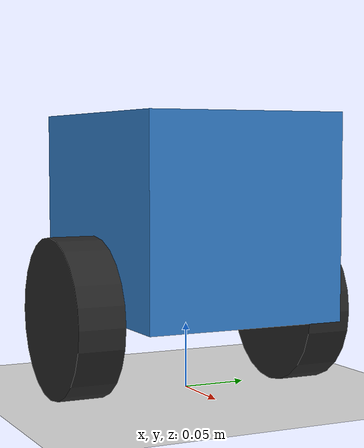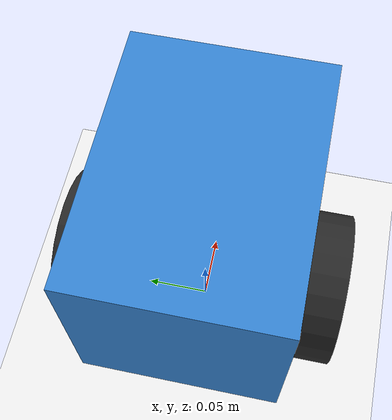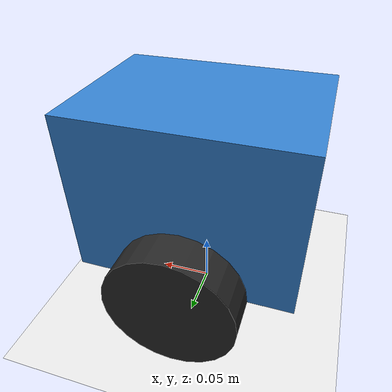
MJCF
<mujoco model="self_balancing_robot">
  <option gravity="0 0 -9.81" timestep="0.002"/>

  <default>
    <geom condim="3" friction="1 0.5 0.01"/>
  </default>

  <worldbody>
    <light pos="0 0 3" dir="0 0 -1" diffuse="0.8 0.8 0.8"/>
    <light pos="2 2 2" dir="-1 -1 -1" diffuse="0.4 0.4 0.4"/>
    <camera pos="0 -2 1.2" xyaxes="1 0 0 0 0.45 0.89" fovy="50"/>

    <geom name="ground" type="plane" size="5 5 0.1" rgba=".9 .9 .9 1"/>

    <!-- Chassis: compact box sitting above wheels -->
    <body name="chassis" pos="0 0 0.135">
      <freejoint name="chassis_free"/>
      <geom name="chassis_geom" type="box" size="0.10 0.075 0.075" mass="2.0" rgba=".2 .5 .8 1"/>

      <!-- Left wheel: bottom at z=0 (ground), offset to side -->
      <body name="left_wheel" pos="0 0.0925 -0.075">
        <joint name="left_wheel_hinge" type="hinge" axis="0 1 0"/>
        <geom name="left_wheel_geom" type="cylinder" size="0.06 0.0175" mass="0.3" euler="-90 0 0" rgba=".15 .15 .15 1"/>
      </body>

      <!-- Right wheel: bottom at z=0 (ground), offset to side -->
      <body name="right_wheel" pos="0 -0.0925 -0.075">
        <joint name="right_wheel_hinge" type="hinge" axis="0 1 0"/>
        <geom name="right_wheel_geom" type="cylinder" size="0.06 0.0175" mass="0.3" euler="-90 0 0" rgba=".15 .15 .15 1"/>
      </body>
    </body>
  </worldbody>

  <actuator>
    <motor name="left_motor"
           joint="left_wheel_hinge"
           gear="1"
           ctrlrange="-10 10"/>

    <motor name="right_motor"
           joint="right_wheel_hinge"
           gear="1"
           ctrlrange="-10 10"/>
  </actuator>
</mujoco>
